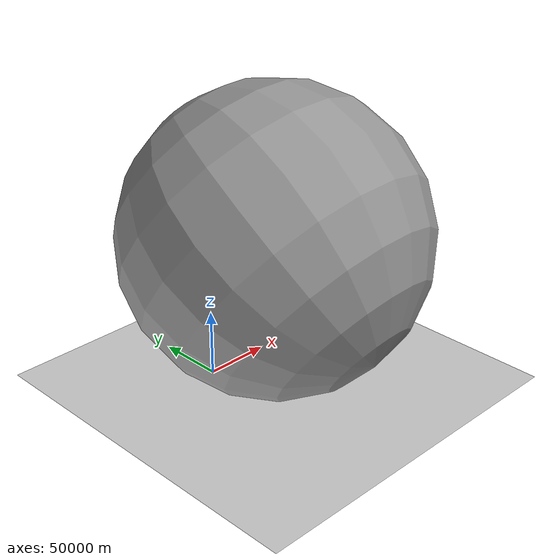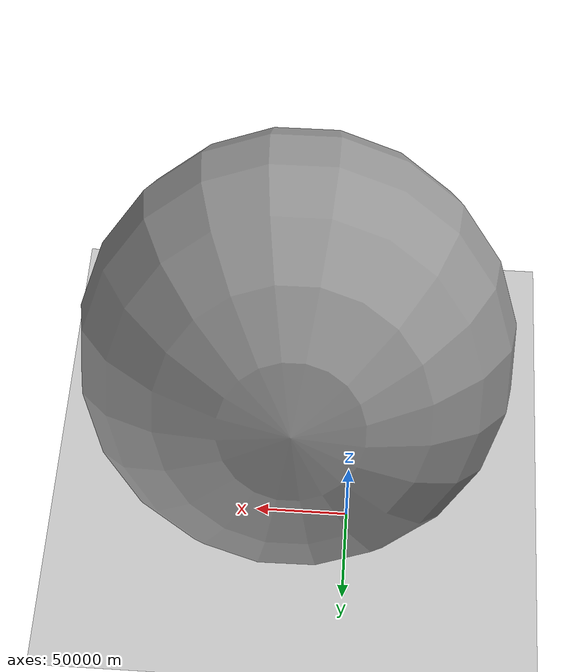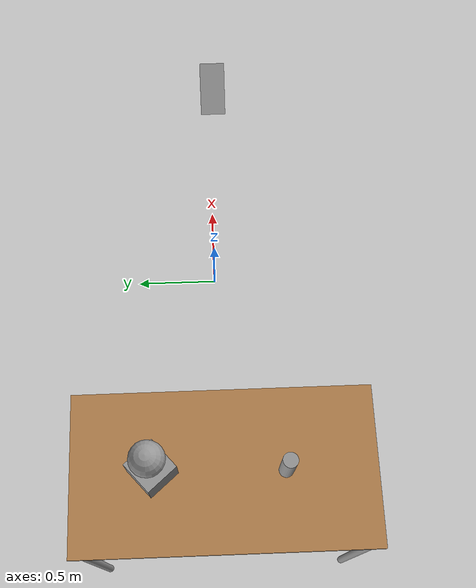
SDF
<sdf version="1.7">
 <world name="default">
  <light name="sun" type="directional">
   <diffuse>0.8 0.8 0.8 1</diffuse>
   <specular>0.2 0.2 0.2 1</specular>
   <attenuation>
    <range>1000</range>
    <constant>0.9</constant>
    <linear>0.01</linear>
    <quadratic>0.001</quadratic>
   </attenuation>
   <direction>-0.5 0.1 -0.9</direction>
   <spot><inner_angle>0</inner_angle><outer_angle>0</outer_angle><falloff>0</falloff></spot>
  </light>
  <model name="ground_plane">
   <static>1</static>
   <link name="link">
    <collision name="collision">
     <geometry><plane><normal>0 0 1</normal><size>100 100</size></plane></geometry>
     <surface>
      <friction><ode><mu>100</mu><mu2>50</mu2></ode></friction>
      <bounce><restitution_coefficient>1</restitution_coefficient><threshold>0</threshold></bounce>
      <contact><ode><max_vel>10000</max_vel><min_depth>0.001</min_depth></ode></contact>
     </surface>
    </collision>
    <visual name="visual">
     <cast_shadows>0</cast_shadows>
     <geometry><plane><normal>0 0 1</normal><size>100 100</size></plane></geometry>
     <material>
      <script><uri>file://media/materials/scripts/gazebo.material</uri><name>Gazebo/Grey</name></script>
     </material>
    </visual>
   </link>
  </model>
  <model name="camera_model">
   <pose>0 0 2 0 0.650607 3.14159</pose>
   <static>1</static>
   <link name="camera_link">
    <visual name="visual"><geometry><box><size>0.2 0.1 0.1</size></box></geometry></visual>
    <sensor name="camera1" type="depth">
     <update_rate>60</update_rate>
     <visualize>1</visualize>
     <camera>
      <horizontal_fov>1.92</horizontal_fov>
      <image><width>1536</width><height>864</height><format>B8G8R8</format></image>
      <depth_camera><output>depths</output></depth_camera>
      <clip><near>0.001</near><far>10</far></clip>
      <noise><type>gaussian</type><mean>1</mean><stddev>0.007</stddev></noise>
     </camera>
     <plugin name="camera_controller" filename="libgazebo_ros_camera.so">
      <ros>
       <namespace>demo_cam</namespace>
       <remapping>mycamera/image_raw:=mycamera/image_demo</remapping>
       <remapping>mycamera/depth/image_raw:=mycamera/depth_demo</remapping>
       <remapping>mycamera/camera_info:=mycamera/raw_cam_info_demo</remapping>
       <remapping>mycamera/depth/camera_info:=mycamera/depth_cam_info_demo</remapping>
       <remapping>mycamera/points:=mycamera/points_demo</remapping>
      </ros>
      <camera_name>mycamera</camera_name>
      <min_depth>0.1</min_depth>
      <max_depth>500</max_depth>
     </plugin>
    </sensor>
   </link>
  </model>
  <gravity>0 0 -9.8</gravity>
  <magnetic_field>6e-06 2.3e-05 -4.2e-05</magnetic_field>
  <atmosphere type="adiabatic"/>
  <physics type="ode">
   <max_step_size>0.001</max_step_size>
   <real_time_factor>1</real_time_factor>
   <real_time_update_rate>1000</real_time_update_rate>
  </physics>
  <scene><ambient>0.4 0.4 0.4 1</ambient><background>0.7 0.7 0.7 1</background><shadows>1</shadows></scene>
  <audio><device>default</device></audio>
  <spherical_coordinates>
   <surface_model>EARTH_WGS84</surface_model>
   <latitude_deg>0</latitude_deg>
   <longitude_deg>0</longitude_deg>
   <elevation>0</elevation>
   <heading_deg>0</heading_deg>
  </spherical_coordinates>
  <model name="table">
   <static>1</static>
   <link name="link">
    <collision name="surface">
     <pose>0 0 1 0 -0 0</pose>
     <geometry><box><size>1.5 0.8 0.03</size></box></geometry>
     <surface><friction><ode><mu>0.6</mu><mu2>0.6</mu2></ode></friction></surface>
    </collision>
    <visual name="visual1">
     <pose>0 0 1 0 -0 0</pose>
     <geometry><box><size>1.5 0.8 0.03</size></box></geometry>
     <material>
      <script><uri>file://media/materials/scripts/gazebo.material</uri><name>Gazebo/Wood</name></script>
     </material>
    </visual>
    <collision name="front_left_leg">
     <pose>0.68 0.38 0.5 0 -0 0</pose>
     <geometry><cylinder><radius>0.02</radius><length>1</length></cylinder></geometry>
    </collision>
    <visual name="front_left_leg">
     <pose>0.68 0.38 0.5 0 -0 0</pose>
     <geometry><cylinder><radius>0.02</radius><length>1</length></cylinder></geometry>
     <material>
      <script><uri>file://media/materials/scripts/gazebo.material</uri><name>Gazebo/Grey</name></script>
     </material>
    </visual>
    <collision name="front_right_leg">
     <pose>0.68 -0.38 0.5 0 -0 0</pose>
     <geometry><cylinder><radius>0.02</radius><length>1</length></cylinder></geometry>
    </collision>
    <visual name="front_right_leg">
     <pose>0.68 -0.38 0.5 0 -0 0</pose>
     <geometry><cylinder><radius>0.02</radius><length>1</length></cylinder></geometry>
     <material>
      <script><uri>file://media/materials/scripts/gazebo.material</uri><name>Gazebo/Grey</name></script>
     </material>
    </visual>
    <collision name="back_right_leg">
     <pose>-0.68 -0.38 0.5 0 -0 0</pose>
     <geometry><cylinder><radius>0.02</radius><length>1</length></cylinder></geometry>
    </collision>
    <visual name="back_right_leg">
     <pose>-0.68 -0.38 0.5 0 -0 0</pose>
     <geometry><cylinder><radius>0.02</radius><length>1</length></cylinder></geometry>
     <material>
      <script><uri>file://media/materials/scripts/gazebo.material</uri><name>Gazebo/Grey</name></script>
     </material>
    </visual>
    <collision name="back_left_leg">
     <pose>-0.68 0.38 0.5 0 -0 0</pose>
     <geometry><cylinder><radius>0.02</radius><length>1</length></cylinder></geometry>
    </collision>
    <visual name="back_left_leg">
     <pose>-0.68 0.38 0.5 0 -0 0</pose>
     <geometry><cylinder><radius>0.02</radius><length>1</length></cylinder></geometry>
     <material>
      <script><uri>file://media/materials/scripts/gazebo.material</uri><name>Gazebo/Grey</name></script>
     </material>
    </visual>
   </link>
   <pose>-1.43749 0 0 0 -0 1.5708</pose>
  </model>
  <model name="unit_sphere">
   <pose>29607.3 -36125.4 111737 2.89656 0.930555 1.30055</pose>
   <link name="link">
    <inertial>
     <mass>1</mass>
     <inertia><ixx>0.1</ixx><ixy>0</ixy><ixz>0</ixz><iyy>0.1</iyy><iyz>0</iyz><izz>0.1</izz></inertia>
    </inertial>
    <collision name="collision"><geometry><sphere><radius>111737</radius></sphere></geometry></collision>
    <visual name="visual">
     <geometry><sphere><radius>111737</radius></sphere></geometry>
     <material>
      <script><name>Gazebo/Grey</name><uri>file://media/materials/scripts/gazebo.material</uri></script>
     </material>
    </visual>
   </link>
  </model>
  <model name="unit_box">
   <pose>-1.43825 0.345503 1.10336 0 1e-06 0.715862</pose>
   <link name="link">
    <inertial>
     <mass>1</mass>
     <inertia>
      <ixx>0.166667</ixx>
      <ixy>0</ixy>
      <ixz>0</ixz>
      <iyy>0.166667</iyy>
      <iyz>0</iyz>
      <izz>0.166667</izz>
     </inertia>
    </inertial>
    <collision name="collision">
     <geometry><box><size>0.176755 0.176755 0.176755</size></box></geometry>
    </collision>
    <visual name="visual">
     <geometry><box><size>0.176755 0.176755 0.176755</size></box></geometry>
     <material>
      <script><name>Gazebo/Grey</name><uri>file://media/materials/scripts/gazebo.material</uri></script>
     </material>
    </visual>
   </link>
  </model>
  <model name="unit_sphere_0">
   <pose>-1.42319 0.352723 1.27892 -0.007525 0.007678 -2.8e-05</pose>
   <link name="link">
    <inertial>
     <mass>1</mass>
     <inertia><ixx>0.1</ixx><ixy>0</ixy><ixz>0</ixz><iyy>0.1</iyy><iyz>0</iyz><izz>0.1</izz></inertia>
    </inertial>
    <collision name="collision"><geometry><sphere><radius>0.0871805</radius></sphere></geometry></collision>
    <visual name="visual">
     <geometry><sphere><radius>0.0871805</radius></sphere></geometry>
     <material>
      <script><name>Gazebo/Grey</name><uri>file://media/materials/scripts/gazebo.material</uri></script>
     </material>
    </visual>
   </link>
  </model>
  <model name="unit_cylinder">
   <pose>-1.45088 -0.299655 1.14149 -0.000131 -3.7e-05 -0.000414</pose>
   <link name="link">
    <inertial>
     <mass>1</mass>
     <inertia><ixx>0.145833</ixx><ixy>0</ixy><ixz>0</ixz><iyy>0.145833</iyy><iyz>0</iyz><izz>0.125</izz></inertia>
    </inertial>
    <collision name="collision">
     <geometry><cylinder><radius>0.0369829</radius><length>0.252989</length></cylinder></geometry>
    </collision>
    <visual name="visual">
     <geometry><cylinder><radius>0.0369829</radius><length>0.252989</length></cylinder></geometry>
     <material>
      <script><name>Gazebo/Grey</name><uri>file://media/materials/scripts/gazebo.material</uri></script>
     </material>
    </visual>
   </link>
  </model>
 </world>
</sdf>
